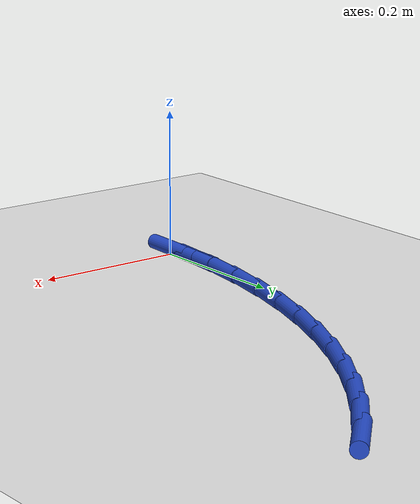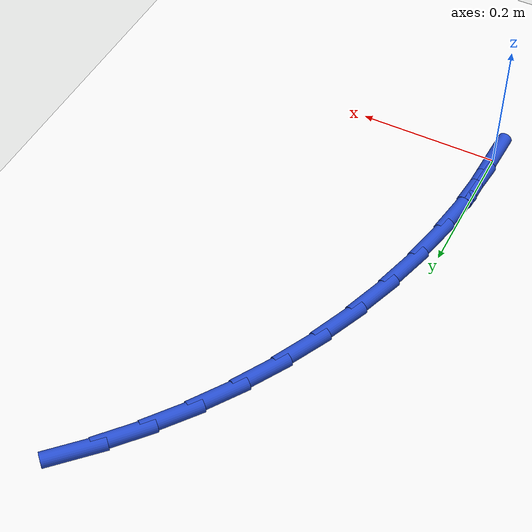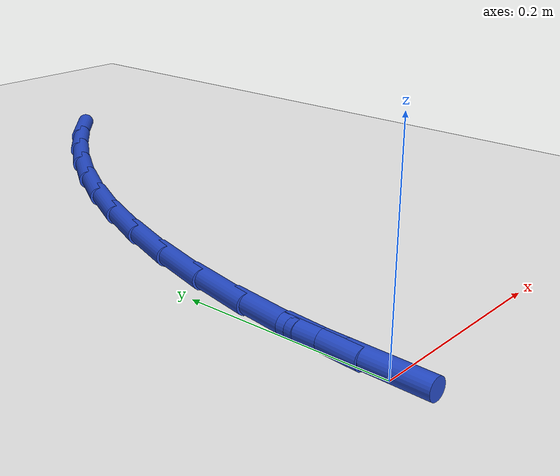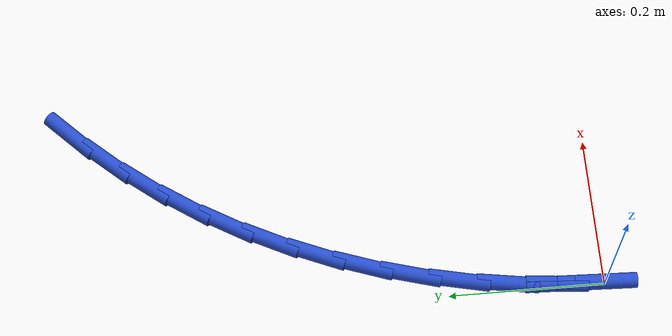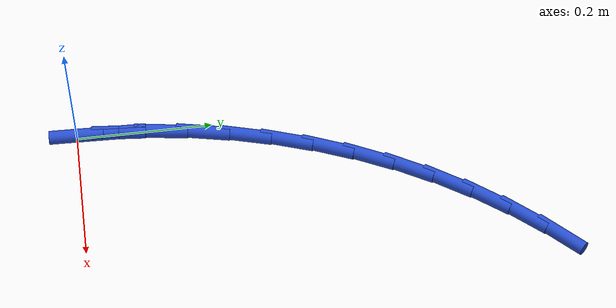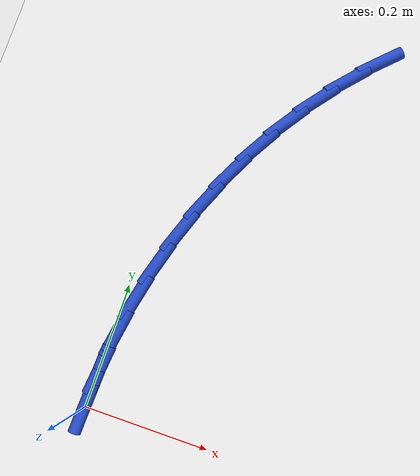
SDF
<sdf version="1.6">
 <world name="default">
  <model name="ground_plane">
   <static>1</static>
   <link name="link">
    <collision name="collision">
     <geometry><plane><normal>0 0 1</normal><size>100 100</size></plane></geometry>
     <surface><friction><ode><mu>100</mu><mu2>50</mu2></ode></friction></surface>
    </collision>
    <visual name="visual">
     <cast_shadows>0</cast_shadows>
     <geometry><plane><normal>0 0 1</normal><size>100 100</size></plane></geometry>
     <material>
      <script><uri>file://media/materials/scripts/gazebo.material</uri><name>Gazebo/WhiteGlow</name></script>
     </material>
    </visual>
   </link>
  </model>
  <model name="line">
   <link name="link_0">
    <pose>9.71445146547012e-17 1.3877787807814457e-16 0.01 0 1.57 1.536955089705824</pose>
    <collision name="collision">
     <geometry><cylinder><radius>0.01</radius><length>0.08</length></cylinder></geometry>
    </collision>
    <visual name="visual">
     <material>
      <script><name>Gazebo/Blue</name><uri>file://media/materials/scripts/gazebo.material</uri></script>
     </material>
     <geometry><cylinder><radius>0.01</radius><length>0.08</length></cylinder></geometry>
    </visual>
   </link>
   <link name="link_1">
    <pose>0.0021023969551862264 0.06210158076732932 0.01 0 1.57 1.4756242049156973</pose>
    <collision name="collision">
     <geometry><cylinder><radius>0.01</radius><length>0.08</length></cylinder></geometry>
    </collision>
    <visual name="visual">
     <material>
      <script><name>Gazebo/Blue</name><uri>file://media/materials/scripts/gazebo.material</uri></script>
     </material>
     <geometry><cylinder><radius>0.01</radius><length>0.08</length></cylinder></geometry>
    </visual>
   </link>
   <link name="link_2">
    <pose>0.008013367479094598 0.12402216168665449 0.01 0 1.57 1.4148936330991313</pose>
    <collision name="collision">
     <geometry><cylinder><radius>0.01</radius><length>0.08</length></cylinder></geometry>
    </collision>
    <visual name="visual">
     <material>
      <script><name>Gazebo/Blue</name><uri>file://media/materials/scripts/gazebo.material</uri></script>
     </material>
     <geometry><cylinder><radius>0.01</radius><length>0.08</length></cylinder></geometry>
    </visual>
   </link>
   <link name="link_3">
    <pose>0.01767291757722473 0.18547820338513882 0.01 0 1.57 1.3543656896429375</pose>
    <collision name="collision">
     <geometry><cylinder><radius>0.01</radius><length>0.08</length></cylinder></geometry>
    </collision>
    <visual name="visual">
     <material>
      <script><name>Gazebo/Blue</name><uri>file://media/materials/scripts/gazebo.material</uri></script>
     </material>
     <geometry><cylinder><radius>0.01</radius><length>0.08</length></cylinder></geometry>
    </visual>
   </link>
   <link name="link_4">
    <pose>0.031021053255076165 0.24618616648994573 0.01 0 1.57 1.2936381622704125</pose>
    <collision name="collision">
     <geometry><cylinder><radius>0.01</radius><length>0.08</length></cylinder></geometry>
    </collision>
    <visual name="visual">
     <material>
      <script><name>Gazebo/Blue</name><uri>file://media/materials/scripts/gazebo.material</uri></script>
     </material>
     <geometry><cylinder><radius>0.01</radius><length>0.08</length></cylinder></geometry>
    </visual>
   </link>
   <link name="link_5">
    <pose>0.047997780518148424 0.3058625116282382 0.01 0 1.57 1.2323075444424925</pose>
    <collision name="collision">
     <geometry><cylinder><radius>0.01</radius><length>0.08</length></cylinder></geometry>
    </collision>
    <visual name="visual">
     <material>
      <script><name>Gazebo/Blue</name><uri>file://media/materials/scripts/gazebo.material</uri></script>
     </material>
     <geometry><cylinder><radius>0.01</radius><length>0.08</length></cylinder></geometry>
    </visual>
   </link>
   <link name="link_6">
    <pose>0.06854310537194103 0.36422369942717964 0.01 0 1.57 1.1699726272722735</pose>
    <collision name="collision">
     <geometry><cylinder><radius>0.01</radius><length>0.08</length></cylinder></geometry>
    </collision>
    <visual name="visual">
     <material>
      <script><name>Gazebo/Blue</name><uri>file://media/materials/scripts/gazebo.material</uri></script>
     </material>
     <geometry><cylinder><radius>0.01</radius><length>0.08</length></cylinder></geometry>
    </visual>
   </link>
   <link name="link_7">
    <pose>0.0925970338219535 0.42098619051393327 0.01 0 1.57 1.1062393611311192</pose>
    <collision name="collision">
     <geometry><cylinder><radius>0.01</radius><length>0.08</length></cylinder></geometry>
    </collision>
    <visual name="visual">
     <material>
      <script><name>Gazebo/Blue</name><uri>file://media/materials/scripts/gazebo.material</uri></script>
     </material>
     <geometry><cylinder><radius>0.01</radius><length>0.08</length></cylinder></geometry>
    </visual>
   </link>
   <link name="link_8">
    <pose>0.12009957187368536 0.47586644551566215 0.01 0 1.57 1.040727932481791</pose>
    <collision name="collision">
     <geometry><cylinder><radius>0.01</radius><length>0.08</length></cylinder></geometry>
    </collision>
    <visual name="visual">
     <material>
      <script><name>Gazebo/Blue</name><uri>file://media/materials/scripts/gazebo.material</uri></script>
     </material>
     <geometry><cylinder><radius>0.01</radius><length>0.08</length></cylinder></geometry>
    </visual>
   </link>
   <link name="link_9">
    <pose>0.1509907255326362 0.5285809250595299 0.01 0 1.57 0.9734471463514827</pose>
    <collision name="collision">
     <geometry><cylinder><radius>0.01</radius><length>0.08</length></cylinder></geometry>
    </collision>
    <visual name="visual">
     <material>
      <script><name>Gazebo/Blue</name><uri>file://media/materials/scripts/gazebo.material</uri></script>
     </material>
     <geometry><cylinder><radius>0.01</radius><length>0.08</length></cylinder></geometry>
    </visual>
   </link>
   <link name="link_10">
    <pose>0.18520039863356036 0.5788706069596308 0.01 0 1.57 0.907288596304726</pose>
    <collision name="collision">
     <geometry><cylinder><radius>0.01</radius><length>0.08</length></cylinder></geometry>
    </collision>
    <visual name="visual">
     <material>
      <script><name>Gazebo/Blue</name><uri>file://media/materials/scripts/gazebo.material</uri></script>
     </material>
     <geometry><cylinder><radius>0.01</radius><length>0.08</length></cylinder></geometry>
    </visual>
   </link>
   <link name="link_11">
    <pose>0.22257474271525815 0.6266797293735678 0.01 0 1.57 0.8440073069510409</pose>
    <collision name="collision">
     <geometry><cylinder><radius>0.01</radius><length>0.08</length></cylinder></geometry>
    </collision>
    <visual name="visual">
     <material>
      <script><name>Gazebo/Blue</name><uri>file://media/materials/scripts/gazebo.material</uri></script>
     </material>
     <geometry><cylinder><radius>0.01</radius><length>0.08</length></cylinder></geometry>
    </visual>
   </link>
   <link name="link_12">
    <pose>0.26291849329105627 0.6720530439489772 0.01 0 1.57 0.7838345853187765</pose>
    <collision name="collision">
     <geometry><cylinder><radius>0.01</radius><length>0.08</length></cylinder></geometry>
    </collision>
    <visual name="visual">
     <material>
      <script><name>Gazebo/Blue</name><uri>file://media/materials/scripts/gazebo.material</uri></script>
     </material>
     <geometry><cylinder><radius>0.01</radius><length>0.08</length></cylinder></geometry>
    </visual>
   </link>
   <link name="link_111">
    <pose>0.002118218394953908 0.0621126837274841 0.01 0 1.57 1.536706706518501</pose>
    <collision name="collision">
     <geometry><cylinder><radius>0.01</radius><length>0.08</length></cylinder></geometry>
    </collision>
    <visual name="visual">
     <material>
      <script><name>Gazebo/Blue</name><uri>file://media/materials/scripts/gazebo.material</uri></script>
     </material>
     <geometry><cylinder><radius>0.01</radius><length>0.08</length></cylinder></geometry>
    </visual>
   </link>
  </model>
 </world>
</sdf>
